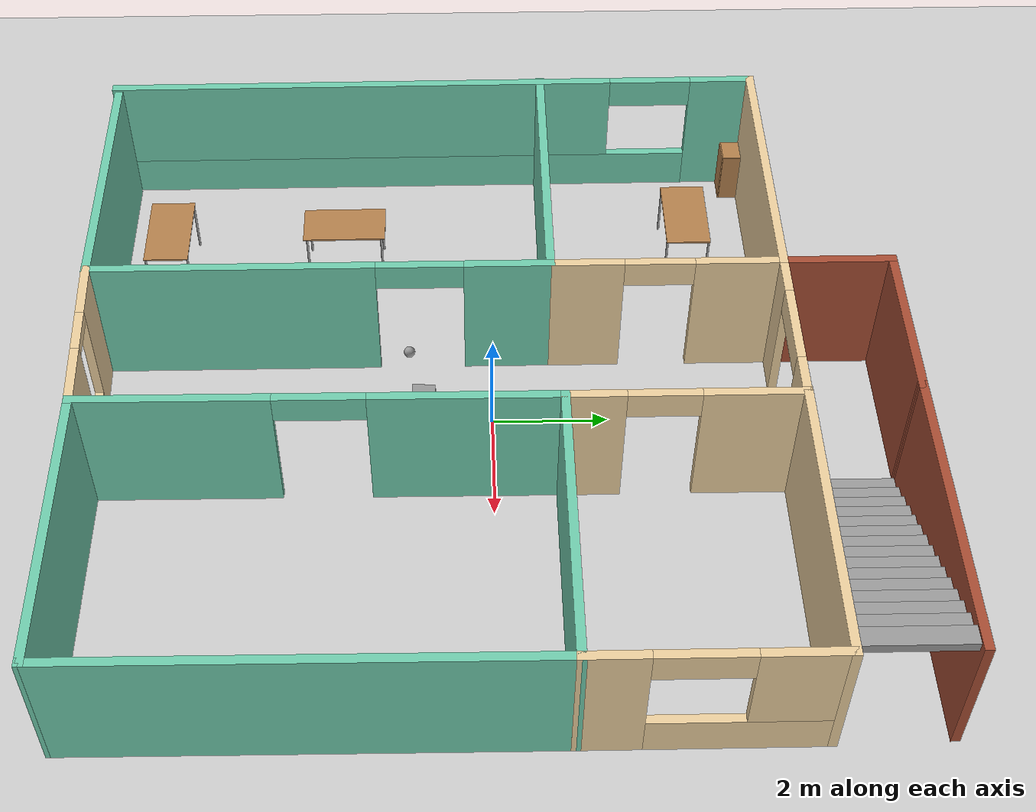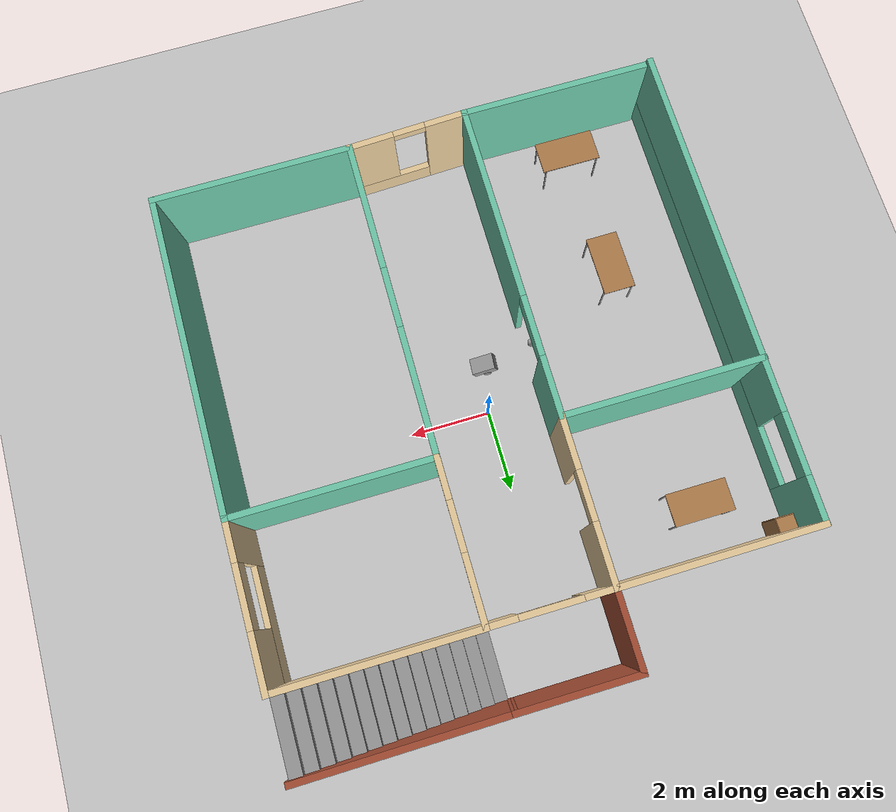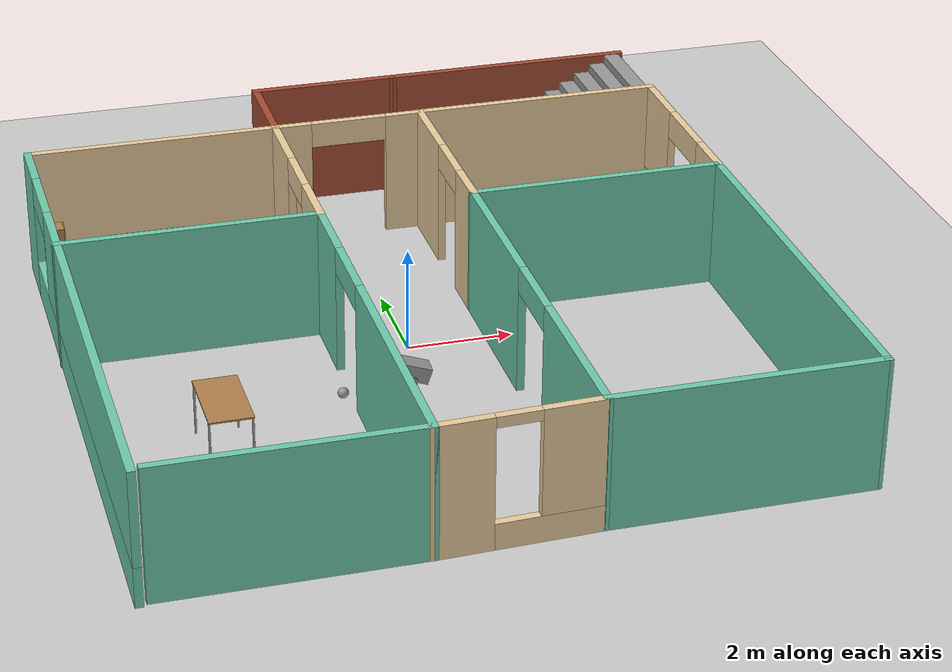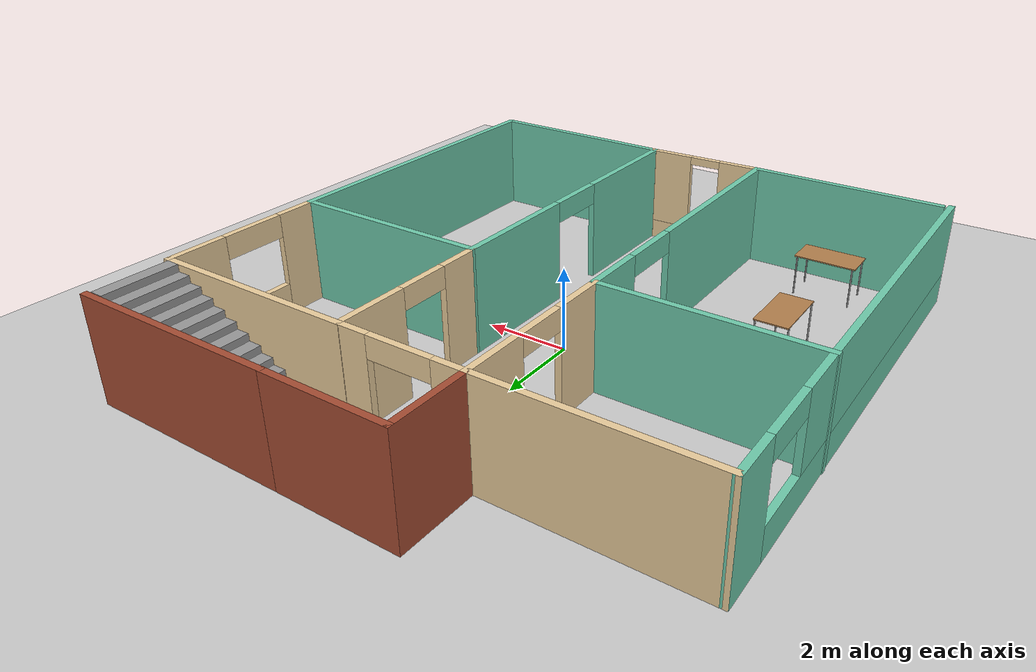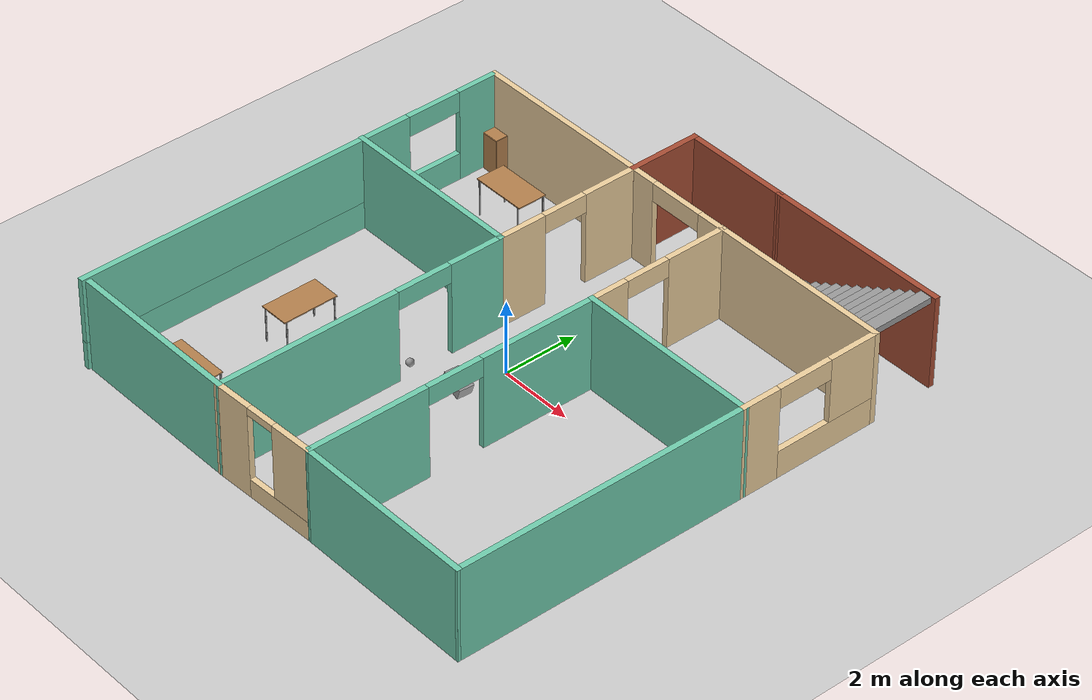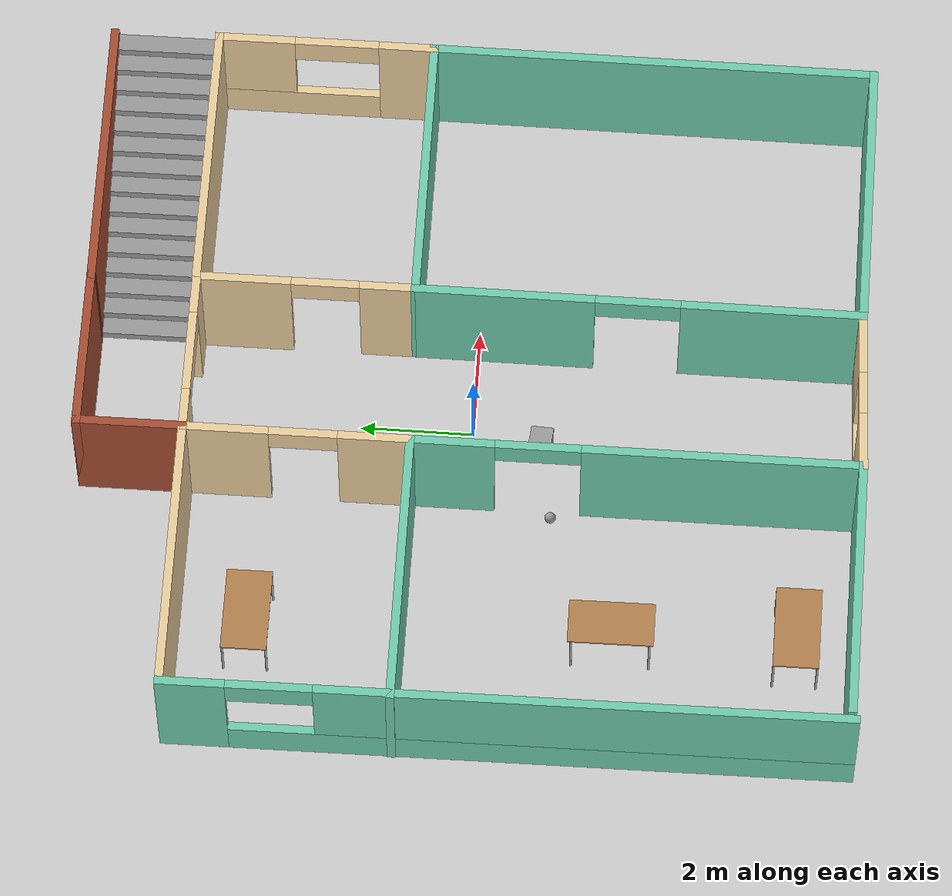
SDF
<sdf version="1.6">
 <world name="default">
  <model name="ground_plane">
   <static>1</static>
   <link name="link">
    <collision name="collision">
     <geometry><plane><normal>0 0 1</normal><size>100 100</size></plane></geometry>
     <surface><friction><ode><mu>100</mu><mu2>50</mu2></ode></friction></surface>
    </collision>
    <visual name="visual">
     <cast_shadows>0</cast_shadows>
     <geometry><plane><normal>0 0 1</normal><size>100 100</size></plane></geometry>
     <material>
      <script><uri>file://media/materials/scripts/gazebo.material</uri><name>Gazebo/Grey</name></script>
     </material>
    </visual>
   </link>
  </model>
  <model name="robot">
   <link name="link_0">
    <pose>-0.18265 0.141093 0.139854 0 -0 0</pose>
    <inertial>
     <mass>1</mass>
     <inertia>
      <ixx>0.166667</ixx>
      <ixy>0</ixy>
      <ixz>0</ixz>
      <iyy>0.166667</iyy>
      <iyz>0</iyz>
      <izz>0.166667</izz>
     </inertia>
    </inertial>
    <visual name="visual">
     <geometry><box><size>0.6 0.4 0.3</size></box></geometry>
     <material>
      <lighting>1</lighting>
      <script><uri>file://media/materials/scripts/gazebo.material</uri><name>Gazebo/Grey</name></script>
      <shader type="pixel"><normal_map>__default__</normal_map></shader>
      <ambient>0.3 0.3 0.3 1</ambient>
      <diffuse>0.7 0.7 0.7 1</diffuse>
      <specular>0.01 0.01 0.01 1</specular>
      <emissive>0 0 0 1</emissive>
     </material>
    </visual>
    <collision name="collision">
     <geometry><box><size>0.6 0.4 0.3</size></box></geometry>
     <surface>
      <friction>
       <ode><mu>1</mu><mu2>1</mu2><fdir1>0 0 0</fdir1><slip1>0</slip1><slip2>0</slip2></ode>
       <torsional>
        <coefficient>1</coefficient>
        <patch_radius>0</patch_radius>
        <surface_radius>0</surface_radius>
        <use_patch_radius>1</use_patch_radius>
        <ode><slip>0</slip></ode>
       </torsional>
      </friction>
      <bounce><restitution_coefficient>0</restitution_coefficient><threshold>1e+06</threshold></bounce>
      <contact>
       <collide_without_contact>0</collide_without_contact>
       <collide_without_contact_bitmask>1</collide_without_contact_bitmask>
       <collide_bitmask>1</collide_bitmask>
       <ode>
        <soft_cfm>0</soft_cfm>
        <soft_erp>0.2</soft_erp>
        <kp>1e+13</kp>
        <kd>1</kd>
        <max_vel>0.01</max_vel>
        <min_depth>0</min_depth>
       </ode>
       <bullet>
        <split_impulse>1</split_impulse>
        <split_impulse_penetration_threshold>-0.01</split_impulse_penetration_threshold>
        <soft_cfm>0</soft_cfm>
        <soft_erp>0.2</soft_erp>
        <kp>1e+13</kp>
        <kd>1</kd>
       </bullet>
      </contact>
     </surface>
    </collision>
   </link>
   <link name="link_1">
    <pose>-0.20265 0.341093 -0.010146 1.5707 -0 0</pose>
    <inertial>
     <mass>1</mass>
     <inertia><ixx>0.145833</ixx><ixy>0</ixy><ixz>0</ixz><iyy>0.145833</iyy><iyz>0</iyz><izz>0.125</izz></inertia>
    </inertial>
    <visual name="visual">
     <geometry><cylinder><radius>0.1</radius><length>0.05</length></cylinder></geometry>
     <material>
      <lighting>1</lighting>
      <script><uri>file://media/materials/scripts/gazebo.material</uri><name>Gazebo/Grey</name></script>
      <shader type="pixel"><normal_map>__default__</normal_map></shader>
      <ambient>0.3 0.3 0.3 1</ambient>
      <diffuse>0.7 0.7 0.7 1</diffuse>
      <specular>0.01 0.01 0.01 1</specular>
      <emissive>0 0 0 1</emissive>
     </material>
    </visual>
    <collision name="collision">
     <geometry><cylinder><radius>0.1</radius><length>0.05</length></cylinder></geometry>
     <surface>
      <friction>
       <ode><mu>1</mu><mu2>1</mu2><fdir1>0 0 0</fdir1><slip1>0</slip1><slip2>0</slip2></ode>
       <torsional>
        <coefficient>1</coefficient>
        <patch_radius>0</patch_radius>
        <surface_radius>0</surface_radius>
        <use_patch_radius>1</use_patch_radius>
        <ode><slip>0</slip></ode>
       </torsional>
      </friction>
      <bounce><restitution_coefficient>0</restitution_coefficient><threshold>1e+06</threshold></bounce>
      <contact>
       <collide_without_contact>0</collide_without_contact>
       <collide_without_contact_bitmask>1</collide_without_contact_bitmask>
       <collide_bitmask>1</collide_bitmask>
       <ode>
        <soft_cfm>0</soft_cfm>
        <soft_erp>0.2</soft_erp>
        <kp>1e+13</kp>
        <kd>1</kd>
        <max_vel>0.01</max_vel>
        <min_depth>0</min_depth>
       </ode>
       <bullet>
        <split_impulse>1</split_impulse>
        <split_impulse_penetration_threshold>-0.01</split_impulse_penetration_threshold>
        <soft_cfm>0</soft_cfm>
        <soft_erp>0.2</soft_erp>
        <kp>1e+13</kp>
        <kd>1</kd>
       </bullet>
      </contact>
     </surface>
    </collision>
   </link>
   <link name="link_1_clone">
    <pose>-0.18265 -0.058907 -0.010146 1.5707 -0 0</pose>
    <inertial>
     <mass>1</mass>
     <inertia><ixx>0.145833</ixx><ixy>0</ixy><ixz>0</ixz><iyy>0.145833</iyy><iyz>0</iyz><izz>0.125</izz></inertia>
    </inertial>
    <visual name="visual">
     <geometry><cylinder><radius>0.1</radius><length>0.05</length></cylinder></geometry>
     <material>
      <lighting>1</lighting>
      <script><uri>file://media/materials/scripts/gazebo.material</uri><name>Gazebo/Grey</name></script>
      <shader type="pixel"><normal_map>__default__</normal_map></shader>
      <ambient>0.3 0.3 0.3 1</ambient>
      <diffuse>0.7 0.7 0.7 1</diffuse>
      <specular>0.01 0.01 0.01 1</specular>
      <emissive>0 0 0 1</emissive>
     </material>
    </visual>
    <collision name="collision">
     <geometry><cylinder><radius>0.1</radius><length>0.05</length></cylinder></geometry>
     <surface>
      <friction>
       <ode><mu>1</mu><mu2>1</mu2><fdir1>0 0 0</fdir1><slip1>0</slip1><slip2>0</slip2></ode>
       <torsional>
        <coefficient>1</coefficient>
        <patch_radius>0</patch_radius>
        <surface_radius>0</surface_radius>
        <use_patch_radius>1</use_patch_radius>
        <ode><slip>0</slip></ode>
       </torsional>
      </friction>
      <bounce><restitution_coefficient>0</restitution_coefficient><threshold>1e+06</threshold></bounce>
      <contact>
       <collide_without_contact>0</collide_without_contact>
       <collide_without_contact_bitmask>1</collide_without_contact_bitmask>
       <collide_bitmask>1</collide_bitmask>
       <ode>
        <soft_cfm>0</soft_cfm>
        <soft_erp>0.2</soft_erp>
        <kp>1e+13</kp>
        <kd>1</kd>
        <max_vel>0.01</max_vel>
        <min_depth>0</min_depth>
       </ode>
       <bullet>
        <split_impulse>1</split_impulse>
        <split_impulse_penetration_threshold>-0.01</split_impulse_penetration_threshold>
        <soft_cfm>0</soft_cfm>
        <soft_erp>0.2</soft_erp>
        <kp>1e+13</kp>
        <kd>1</kd>
       </bullet>
      </contact>
     </surface>
    </collision>
   </link>
   <joint name="link_0_JOINT_0" type="revolute">
    <parent>link_0</parent>
    <child>link_1_clone</child>
    <axis>
     <xyz>1 0 0</xyz>
     <use_parent_model_frame>0</use_parent_model_frame>
     <limit>
      <lower>-1.79769e+308</lower>
      <upper>1.79769e+308</upper>
      <effort>-1</effort>
      <velocity>-1</velocity>
     </limit>
     <dynamics>
      <spring_reference>0</spring_reference>
      <spring_stiffness>0</spring_stiffness>
      <damping>0</damping>
     </dynamics>
    </axis>
    <physics>
     <ode><limit><cfm>0</cfm><erp>0.2</erp></limit><suspension><cfm>0</cfm><erp>0.2</erp></suspension></ode>
    </physics>
   </joint>
   <joint name="link_0_JOINT_1" type="revolute">
    <parent>link_0</parent>
    <child>link_1</child>
    <axis>
     <xyz>1 0 0</xyz>
     <use_parent_model_frame>0</use_parent_model_frame>
     <limit>
      <lower>-1.79769e+308</lower>
      <upper>1.79769e+308</upper>
      <effort>-1</effort>
      <velocity>-1</velocity>
     </limit>
     <dynamics>
      <spring_reference>0</spring_reference>
      <spring_stiffness>0</spring_stiffness>
      <damping>0</damping>
     </dynamics>
    </axis>
    <physics>
     <ode><limit><cfm>0</cfm><erp>0.2</erp></limit><suspension><cfm>0</cfm><erp>0.2</erp></suspension></ode>
    </physics>
   </joint>
   <static>0</static>
   <pose>-0.10996 -1.35477 0.051638 -0.016449 0.317824 -0.065412</pose>
  </model>
  <model name="building">
   <pose>0.088523 -0.033971 0 0 -0 0</pose>
   <link name="Stairs_0">
    <visual name="Stairs_0_Visual_0">
     <pose>1.59394 5.92691 0.083333 0 -0 1.5708</pose>
     <geometry><box><size>1.7 0.320986 0.166667</size></box></geometry>
     <material>
      <script><uri>file://media/materials/scripts/gazebo.material</uri><name>Gazebo/Grey</name></script>
      <ambient>1 1 1 1</ambient>
     </material>
     <meta><layer>0</layer></meta>
    </visual>
    <collision name="Stairs_0_Collision_0">
     <geometry><box><size>1.7 0.320986 0.166667</size></box></geometry>
     <pose>1.59394 5.92691 0.083333 0 -0 1.5708</pose>
    </collision>
    <visual name="Stairs_0_Visual_1">
     <pose>1.91492 5.92691 0.25 0 -0 1.5708</pose>
     <geometry><box><size>1.7 0.320986 0.166667</size></box></geometry>
     <material>
      <script><uri>file://media/materials/scripts/gazebo.material</uri><name>Gazebo/Grey</name></script>
      <ambient>1 1 1 1</ambient>
     </material>
     <meta><layer>0</layer></meta>
    </visual>
    <collision name="Stairs_0_Collision_1">
     <geometry><box><size>1.7 0.320986 0.166667</size></box></geometry>
     <pose>1.91492 5.92691 0.25 0 -0 1.5708</pose>
    </collision>
    <visual name="Stairs_0_Visual_2">
     <pose>2.23591 5.92691 0.416667 0 -0 1.5708</pose>
     <geometry><box><size>1.7 0.320986 0.166667</size></box></geometry>
     <material>
      <script><uri>file://media/materials/scripts/gazebo.material</uri><name>Gazebo/Grey</name></script>
      <ambient>1 1 1 1</ambient>
     </material>
     <meta><layer>0</layer></meta>
    </visual>
    <collision name="Stairs_0_Collision_2">
     <geometry><box><size>1.7 0.320986 0.166667</size></box></geometry>
     <pose>2.23591 5.92691 0.416667 0 -0 1.5708</pose>
    </collision>
    <visual name="Stairs_0_Visual_3">
     <pose>2.55689 5.92691 0.583333 0 -0 1.5708</pose>
     <geometry><box><size>1.7 0.320986 0.166667</size></box></geometry>
     <material>
      <script><uri>file://media/materials/scripts/gazebo.material</uri><name>Gazebo/Grey</name></script>
      <ambient>1 1 1 1</ambient>
     </material>
     <meta><layer>0</layer></meta>
    </visual>
    <collision name="Stairs_0_Collision_3">
     <geometry><box><size>1.7 0.320986 0.166667</size></box></geometry>
     <pose>2.55689 5.92691 0.583333 0 -0 1.5708</pose>
    </collision>
    <visual name="Stairs_0_Visual_4">
     <pose>2.87788 5.92691 0.75 0 -0 1.5708</pose>
     <geometry><box><size>1.7 0.320986 0.166667</size></box></geometry>
     <material>
      <script><uri>file://media/materials/scripts/gazebo.material</uri><name>Gazebo/Grey</name></script>
      <ambient>1 1 1 1</ambient>
     </material>
     <meta><layer>0</layer></meta>
    </visual>
    <collision name="Stairs_0_Collision_4">
     <geometry><box><size>1.7 0.320986 0.166667</size></box></geometry>
     <pose>2.87788 5.92691 0.75 0 -0 1.5708</pose>
    </collision>
    <visual name="Stairs_0_Visual_5">
     <pose>3.19887 5.92691 0.916667 0 -0 1.5708</pose>
     <geometry><box><size>1.7 0.320986 0.166667</size></box></geometry>
     <material>
      <script><uri>file://media/materials/scripts/gazebo.material</uri><name>Gazebo/Grey</name></script>
      <ambient>1 1 1 1</ambient>
     </material>
     <meta><layer>0</layer></meta>
    </visual>
    <collision name="Stairs_0_Collision_5">
     <geometry><box><size>1.7 0.320986 0.166667</size></box></geometry>
     <pose>3.19887 5.92691 0.916667 0 -0 1.5708</pose>
    </collision>
    <visual name="Stairs_0_Visual_6">
     <pose>3.51985 5.92691 1.08333 0 -0 1.5708</pose>
     <geometry><box><size>1.7 0.320986 0.166667</size></box></geometry>
     <material>
      <script><uri>file://media/materials/scripts/gazebo.material</uri><name>Gazebo/Grey</name></script>
      <ambient>1 1 1 1</ambient>
     </material>
     <meta><layer>0</layer></meta>
    </visual>
    <collision name="Stairs_0_Collision_6">
     <geometry><box><size>1.7 0.320986 0.166667</size></box></geometry>
     <pose>3.51985 5.92691 1.08333 0 -0 1.5708</pose>
    </collision>
    <visual name="Stairs_0_Visual_7">
     <pose>3.84084 5.92691 1.25 0 -0 1.5708</pose>
     <geometry><box><size>1.7 0.320986 0.166667</size></box></geometry>
     <material>
      <script><uri>file://media/materials/scripts/gazebo.material</uri><name>Gazebo/Grey</name></script>
      <ambient>1 1 1 1</ambient>
     </material>
     <meta><layer>0</layer></meta>
    </visual>
    <collision name="Stairs_0_Collision_7">
     <geometry><box><size>1.7 0.320986 0.166667</size></box></geometry>
     <pose>3.84084 5.92691 1.25 0 -0 1.5708</pose>
    </collision>
    <visual name="Stairs_0_Visual_8">
     <pose>4.16182 5.92691 1.41667 0 -0 1.5708</pose>
     <geometry><box><size>1.7 0.320986 0.166667</size></box></geometry>
     <material>
      <script><uri>file://media/materials/scripts/gazebo.material</uri><name>Gazebo/Grey</name></script>
      <ambient>1 1 1 1</ambient>
     </material>
     <meta><layer>0</layer></meta>
    </visual>
    <collision name="Stairs_0_Collision_8">
     <geometry><box><size>1.7 0.320986 0.166667</size></box></geometry>
     <pose>4.16182 5.92691 1.41667 0 -0 1.5708</pose>
    </collision>
    <visual name="Stairs_0_Visual_9">
     <pose>4.48281 5.92691 1.58333 0 -0 1.5708</pose>
     <geometry><box><size>1.7 0.320986 0.166667</size></box></geometry>
     <material>
      <script><uri>file://media/materials/scripts/gazebo.material</uri><name>Gazebo/Grey</name></script>
      <ambient>1 1 1 1</ambient>
     </material>
     <meta><layer>0</layer></meta>
    </visual>
    <collision name="Stairs_0_Collision_9">
     <geometry><box><size>1.7 0.320986 0.166667</size></box></geometry>
     <pose>4.48281 5.92691 1.58333 0 -0 1.5708</pose>
    </collision>
    <visual name="Stairs_0_Visual_10">
     <pose>4.8038 5.92691 1.75 0 -0 1.5708</pose>
     <geometry><box><size>1.7 0.320986 0.166667</size></box></geometry>
     <material>
      <script><uri>file://media/materials/scripts/gazebo.material</uri><name>Gazebo/Grey</name></script>
      <ambient>1 1 1 1</ambient>
     </material>
     <meta><layer>0</layer></meta>
    </visual>
    <collision name="Stairs_0_Collision_10">
     <geometry><box><size>1.7 0.320986 0.166667</size></box></geometry>
     <pose>4.8038 5.92691 1.75 0 -0 1.5708</pose>
    </collision>
    <visual name="Stairs_0_Visual_11">
     <pose>5.12478 5.92691 1.91667 0 -0 1.5708</pose>
     <geometry><box><size>1.7 0.320986 0.166667</size></box></geometry>
     <material>
      <script><uri>file://media/materials/scripts/gazebo.material</uri><name>Gazebo/Grey</name></script>
      <ambient>1 1 1 1</ambient>
     </material>
     <meta><layer>0</layer></meta>
    </visual>
    <collision name="Stairs_0_Collision_11">
     <geometry><box><size>1.7 0.320986 0.166667</size></box></geometry>
     <pose>5.12478 5.92691 1.91667 0 -0 1.5708</pose>
    </collision>
    <visual name="Stairs_0_Visual_12">
     <pose>5.44577 5.92691 2.08333 0 -0 1.5708</pose>
     <geometry><box><size>1.7 0.320986 0.166667</size></box></geometry>
     <material>
      <script><uri>file://media/materials/scripts/gazebo.material</uri><name>Gazebo/Grey</name></script>
      <ambient>1 1 1 1</ambient>
     </material>
     <meta><layer>0</layer></meta>
    </visual>
    <collision name="Stairs_0_Collision_12">
     <geometry><box><size>1.7 0.320986 0.166667</size></box></geometry>
     <pose>5.44577 5.92691 2.08333 0 -0 1.5708</pose>
    </collision>
    <visual name="Stairs_0_Visual_13">
     <pose>5.76675 5.92691 2.25 0 -0 1.5708</pose>
     <geometry><box><size>1.7 0.320986 0.166667</size></box></geometry>
     <material>
      <script><uri>file://media/materials/scripts/gazebo.material</uri><name>Gazebo/Grey</name></script>
      <ambient>1 1 1 1</ambient>
     </material>
     <meta><layer>0</layer></meta>
    </visual>
    <collision name="Stairs_0_Collision_13">
     <geometry><box><size>1.7 0.320986 0.166667</size></box></geometry>
     <pose>5.76675 5.92691 2.25 0 -0 1.5708</pose>
    </collision>
    <visual name="Stairs_0_Visual_14">
     <pose>6.08774 5.92691 2.41667 0 -0 1.5708</pose>
     <geometry><box><size>1.7 0.320986 0.166667</size></box></geometry>
     <material>
      <script><uri>file://media/materials/scripts/gazebo.material</uri><name>Gazebo/Grey</name></script>
      <ambient>1 1 1 1</ambient>
     </material>
     <meta><layer>0</layer></meta>
    </visual>
    <collision name="Stairs_0_Collision_14">
     <geometry><box><size>1.7 0.320986 0.166667</size></box></geometry>
     <pose>6.08774 5.92691 2.41667 0 -0 1.5708</pose>
    </collision>
   </link>
   <link name="Wall_0">
    <collision name="Wall_0_Collision">
     <geometry><box><size>3 0.15 2.5</size></box></geometry>
     <pose>0 0 1.25 0 -0 0</pose>
    </collision>
    <visual name="Wall_0_Visual">
     <pose>0 0 1.25 0 -0 0</pose>
     <geometry><box><size>3 0.15 2.5</size></box></geometry>
     <material>
      <script><uri>file://media/materials/scripts/gazebo.material</uri><name>Gazebo/Bricks</name></script>
      <ambient>1 1 1 1</ambient>
     </material>
     <meta><layer>0</layer></meta>
    </visual>
    <pose>-0.046466 6.84416 0 0 -0 3.14159</pose>
   </link>
   <link name="Wall_1">
    <collision name="Wall_1_Collision">
     <geometry><box><size>2 0.15 2.5</size></box></geometry>
     <pose>0 0 1.25 0 -0 0</pose>
    </collision>
    <visual name="Wall_1_Visual">
     <pose>0 0 1.25 0 -0 0</pose>
     <geometry><box><size>2 0.15 2.5</size></box></geometry>
     <material>
      <script><uri>file://media/materials/scripts/gazebo.material</uri><name>Gazebo/Bricks</name></script>
      <ambient>1 1 1 1</ambient>
     </material>
     <meta><layer>0</layer></meta>
    </visual>
    <pose>-1.47147 5.91916 0 0 0 -1.5708</pose>
   </link>
   <link name="Wall_10">
    <collision name="Wall_10_Collision">
     <geometry><box><size>5 0.15 2.5</size></box></geometry>
     <pose>0 0 1.25 0 -0 0</pose>
    </collision>
    <visual name="Wall_10_Visual">
     <pose>0 0 1.25 0 -0 0</pose>
     <geometry><box><size>5 0.15 2.5</size></box></geometry>
     <material>
      <script><uri>file://media/materials/scripts/gazebo.material</uri><name>Gazebo/Grey</name></script>
      <ambient>0.435294 0.796078 0.67451 1</ambient>
     </material>
     <meta><layer>0</layer></meta>
    </visual>
    <pose>-3.90087 1.0402 0 0 -0 3.14159</pose>
   </link>
   <link name="Wall_12">
    <pose>1.47553 3.07898 0 0 -0 1.5708</pose>
    <visual name="Wall_12_Visual_0">
     <pose>-1.47098 0 1.25 0 -0 0</pose>
     <geometry><box><size>1.05804 0.15 2.5</size></box></geometry>
     <material>
      <script><uri>file://media/materials/scripts/gazebo.material</uri><name>Gazebo/Grey</name></script>
      <ambient>0.921569 0.807843 0.615686 1</ambient>
     </material>
     <meta><layer>0</layer></meta>
    </visual>
    <collision name="Wall_12_Collision_0">
     <geometry><box><size>1.05804 0.15 2.5</size></box></geometry>
     <pose>-1.47098 0 1.25 0 -0 0</pose>
    </collision>
    <visual name="Wall_12_Visual_1">
     <pose>1.12902 0 1.25 0 -0 0</pose>
     <geometry><box><size>1.74196 0.15 2.5</size></box></geometry>
     <material>
      <script><uri>file://media/materials/scripts/gazebo.material</uri><name>Gazebo/Grey</name></script>
      <ambient>0.921569 0.807843 0.615686 1</ambient>
     </material>
     <meta><layer>0</layer></meta>
    </visual>
    <collision name="Wall_12_Collision_1">
     <geometry><box><size>1.74196 0.15 2.5</size></box></geometry>
     <pose>1.12902 0 1.25 0 -0 0</pose>
    </collision>
    <visual name="Wall_12_Visual_2">
     <pose>-0.341962 0 2.25 0 -0 0</pose>
     <geometry><box><size>1.2 0.15 0.5</size></box></geometry>
     <material>
      <script><uri>file://media/materials/scripts/gazebo.material</uri><name>Gazebo/Grey</name></script>
      <ambient>0.921569 0.807843 0.615686 1</ambient>
     </material>
     <meta><layer>0</layer></meta>
    </visual>
    <collision name="Wall_12_Collision_2">
     <geometry><box><size>1.2 0.15 0.5</size></box></geometry>
     <pose>-0.341962 0 2.25 0 -0 0</pose>
    </collision>
   </link>
   <link name="Wall_15">
    <collision name="Wall_15_Collision">
     <geometry><box><size>5 0.15 2.5</size></box></geometry>
     <pose>0 0 1.25 0 -0 0</pose>
    </collision>
    <visual name="Wall_15_Visual">
     <pose>0 0 1.25 0 -0 0</pose>
     <geometry><box><size>5 0.15 2.5</size></box></geometry>
     <material>
      <script><uri>file://media/materials/scripts/gazebo.material</uri><name>Gazebo/Grey</name></script>
      <ambient>0.435294 0.796078 0.67451 1</ambient>
     </material>
     <meta><layer>0</layer></meta>
    </visual>
    <pose>3.90053 1.15398 0 0 -0 0</pose>
   </link>
   <link name="Wall_18">
    <pose>-1.47587 -2.8848 0 0 0 -1.5708</pose>
    <visual name="Wall_18_Visual_0">
     <pose>-3.2267 0 1.25 0 -0 0</pose>
     <geometry><box><size>1.54659 0.15 2.5</size></box></geometry>
     <material>
      <script><uri>file://media/materials/scripts/gazebo.material</uri><name>Gazebo/Grey</name></script>
      <ambient>0.435294 0.796078 0.67451 1</ambient>
     </material>
     <meta><layer>0</layer></meta>
    </visual>
    <collision name="Wall_18_Collision_0">
     <geometry><box><size>1.54659 0.15 2.5</size></box></geometry>
     <pose>-3.2267 0 1.25 0 -0 0</pose>
    </collision>
    <visual name="Wall_18_Visual_1">
     <pose>1.5233 0 1.25 0 -0 0</pose>
     <geometry><box><size>4.95341 0.15 2.5</size></box></geometry>
     <material>
      <script><uri>file://media/materials/scripts/gazebo.material</uri><name>Gazebo/Grey</name></script>
      <ambient>0.435294 0.796078 0.67451 1</ambient>
     </material>
     <meta><layer>0</layer></meta>
    </visual>
    <collision name="Wall_18_Collision_1">
     <geometry><box><size>4.95341 0.15 2.5</size></box></geometry>
     <pose>1.5233 0 1.25 0 -0 0</pose>
    </collision>
    <visual name="Wall_18_Visual_2">
     <pose>-1.70341 0 2.25 0 -0 0</pose>
     <geometry><box><size>1.5 0.15 0.5</size></box></geometry>
     <material>
      <script><uri>file://media/materials/scripts/gazebo.material</uri><name>Gazebo/Grey</name></script>
      <ambient>0.435294 0.796078 0.67451 1</ambient>
     </material>
     <meta><layer>0</layer></meta>
    </visual>
    <collision name="Wall_18_Collision_2">
     <geometry><box><size>1.5 0.15 0.5</size></box></geometry>
     <pose>-1.70341 0 2.25 0 -0 0</pose>
    </collision>
   </link>
   <link name="Wall_19">
    <collision name="Wall_19_Collision">
     <geometry><box><size>4.75 0.15 2.5</size></box></geometry>
     <pose>0 0 1.25 0 -0 0</pose>
    </collision>
    <visual name="Wall_19_Visual">
     <pose>0 0 1.25 0 -0 0</pose>
     <geometry><box><size>4.75 0.15 2.5</size></box></geometry>
     <material>
      <script><uri>file://media/materials/scripts/gazebo.material</uri><name>Gazebo/Grey</name></script>
      <ambient>0.435294 0.796078 0.67451 1</ambient>
     </material>
     <meta><layer>0</layer></meta>
    </visual>
    <pose>-3.77587 -6.8098 0 0 -0 3.14159</pose>
   </link>
   <link name="Wall_2">
    <collision name="Wall_2_Collision">
     <geometry><box><size>5 0.15 2.5</size></box></geometry>
     <pose>0 0 1.25 0 -0 0</pose>
    </collision>
    <visual name="Wall_2_Visual">
     <pose>0 0 1.25 0 -0 0</pose>
     <geometry><box><size>5 0.15 2.5</size></box></geometry>
     <material>
      <script><uri>file://media/materials/scripts/gazebo.material</uri><name>Gazebo/Grey</name></script>
      <ambient>0.921569 0.807843 0.615686 1</ambient>
     </material>
     <meta><layer>0</layer></meta>
    </visual>
    <pose>-3.89682 4.98839 0 0 0 -3.13921</pose>
   </link>
   <link name="Wall_21">
    <pose>1.45804 -2.77101 0 0 0 -1.57525</pose>
    <visual name="Wall_21_Visual_0">
     <pose>-2.38457 0 1.25 0 -0 0</pose>
     <geometry><box><size>3.23086 0.15 2.5</size></box></geometry>
     <material>
      <script><uri>file://media/materials/scripts/gazebo.material</uri><name>Gazebo/Grey</name></script>
      <ambient>0.435294 0.796078 0.67451 1</ambient>
     </material>
     <meta><layer>0</layer></meta>
    </visual>
    <collision name="Wall_21_Collision_0">
     <geometry><box><size>3.23086 0.15 2.5</size></box></geometry>
     <pose>-2.38457 0 1.25 0 -0 0</pose>
    </collision>
    <visual name="Wall_21_Visual_1">
     <pose>2.36543 0 1.25 0 -0 0</pose>
     <geometry><box><size>3.26914 0.15 2.5</size></box></geometry>
     <material>
      <script><uri>file://media/materials/scripts/gazebo.material</uri><name>Gazebo/Grey</name></script>
      <ambient>0.435294 0.796078 0.67451 1</ambient>
     </material>
     <meta><layer>0</layer></meta>
    </visual>
    <collision name="Wall_21_Collision_1">
     <geometry><box><size>3.26914 0.15 2.5</size></box></geometry>
     <pose>2.36543 0 1.25 0 -0 0</pose>
    </collision>
    <visual name="Wall_21_Visual_2">
     <pose>-0.019144 0 2.25 0 -0 0</pose>
     <geometry><box><size>1.5 0.15 0.5</size></box></geometry>
     <material>
      <script><uri>file://media/materials/scripts/gazebo.material</uri><name>Gazebo/Grey</name></script>
      <ambient>0.435294 0.796078 0.67451 1</ambient>
     </material>
     <meta><layer>0</layer></meta>
    </visual>
    <collision name="Wall_21_Collision_2">
     <geometry><box><size>1.5 0.15 0.5</size></box></geometry>
     <pose>-0.019144 0 2.25 0 -0 0</pose>
    </collision>
   </link>
   <link name="Wall_24">
    <collision name="Wall_24_Collision">
     <geometry><box><size>5 0.15 2.5</size></box></geometry>
     <pose>0 0 1.25 0 -0 0</pose>
    </collision>
    <visual name="Wall_24_Visual">
     <pose>0 0 1.25 0 -0 0</pose>
     <geometry><box><size>5 0.15 2.5</size></box></geometry>
     <material>
      <script><uri>file://media/materials/scripts/gazebo.material</uri><name>Gazebo/Grey</name></script>
      <ambient>0.921569 0.807843 0.615686 1</ambient>
     </material>
     <meta><layer>0</layer></meta>
    </visual>
    <pose>3.90053 5.00398 0 0 -0 3.14159</pose>
   </link>
   <link name="Wall_26">
    <pose>6.32553 3.07898 0 0 -0 1.5708</pose>
    <visual name="Wall_26_Visual_0">
     <pose>-1.4666 0 1.25 0 -0 0</pose>
     <geometry><box><size>1.0668 0.15 2.5</size></box></geometry>
     <material>
      <script><uri>file://media/materials/scripts/gazebo.material</uri><name>Gazebo/Grey</name></script>
      <ambient>0.921569 0.807843 0.615686 1</ambient>
     </material>
     <meta><layer>0</layer></meta>
    </visual>
    <collision name="Wall_26_Collision_0">
     <geometry><box><size>1.0668 0.15 2.5</size></box></geometry>
     <pose>-1.4666 0 1.25 0 -0 0</pose>
    </collision>
    <visual name="Wall_26_Visual_1">
     <pose>0.533401 0 0.375 0 -0 0</pose>
     <geometry><box><size>2.9332 0.15 0.75</size></box></geometry>
     <material>
      <script><uri>file://media/materials/scripts/gazebo.material</uri><name>Gazebo/Grey</name></script>
      <ambient>0.921569 0.807843 0.615686 1</ambient>
     </material>
     <meta><layer>0</layer></meta>
    </visual>
    <collision name="Wall_26_Collision_1">
     <geometry><box><size>2.9332 0.15 0.75</size></box></geometry>
     <pose>0.533401 0 0.375 0 -0 0</pose>
    </collision>
    <visual name="Wall_26_Visual_2">
     <pose>1.2834 0 1.625 0 -0 0</pose>
     <geometry><box><size>1.4332 0.15 1.75</size></box></geometry>
     <material>
      <script><uri>file://media/materials/scripts/gazebo.material</uri><name>Gazebo/Grey</name></script>
      <ambient>0.921569 0.807843 0.615686 1</ambient>
     </material>
     <meta><layer>0</layer></meta>
    </visual>
    <collision name="Wall_26_Collision_2">
     <geometry><box><size>1.4332 0.15 1.75</size></box></geometry>
     <pose>1.2834 0 1.625 0 -0 0</pose>
    </collision>
    <visual name="Wall_26_Visual_3">
     <pose>-0.183198 0 2.225 0 -0 0</pose>
     <geometry><box><size>1.5 0.15 0.55</size></box></geometry>
     <material>
      <script><uri>file://media/materials/scripts/gazebo.material</uri><name>Gazebo/Grey</name></script>
      <ambient>0.921569 0.807843 0.615686 1</ambient>
     </material>
     <meta><layer>0</layer></meta>
    </visual>
    <collision name="Wall_26_Collision_3">
     <geometry><box><size>1.5 0.15 0.55</size></box></geometry>
     <pose>-0.183198 0 2.225 0 -0 0</pose>
    </collision>
   </link>
   <link name="Wall_28">
    <collision name="Wall_28_Collision">
     <geometry><box><size>5 0.15 2.5</size></box></geometry>
     <pose>0 0 1.25 0 -0 0</pose>
    </collision>
    <visual name="Wall_28_Visual">
     <pose>0 0 1.25 0 -0 0</pose>
     <geometry><box><size>5 0.15 2.5</size></box></geometry>
     <material>
      <script><uri>file://media/materials/scripts/gazebo.material</uri><name>Gazebo/Grey</name></script>
      <ambient>0.435294 0.796078 0.67451 1</ambient>
     </material>
     <meta><layer>0</layer></meta>
    </visual>
    <pose>3.86555 -6.69602 0 0 -0 0</pose>
   </link>
   <link name="Wall_3">
    <pose>-6.29817 -0.942386 0 0 0 -1.56675</pose>
    <visual name="Wall_3_Visual_0">
     <pose>-5.39979 0 1.25 0 -0 0</pose>
     <geometry><box><size>1.20042 0.15 2.5</size></box></geometry>
     <material>
      <script><uri>file://media/materials/scripts/gazebo.material</uri><name>Gazebo/Grey</name></script>
      <ambient>0.435294 0.796078 0.67451 1</ambient>
     </material>
     <meta><layer>0</layer></meta>
    </visual>
    <collision name="Wall_3_Collision_0">
     <geometry><box><size>1.20042 0.15 2.5</size></box></geometry>
     <pose>-5.39979 0 1.25 0 -0 0</pose>
    </collision>
    <visual name="Wall_3_Visual_1">
     <pose>0.600208 0 0.375 0 -0 0</pose>
     <geometry><box><size>10.7996 0.15 0.75</size></box></geometry>
     <material>
      <script><uri>file://media/materials/scripts/gazebo.material</uri><name>Gazebo/Grey</name></script>
      <ambient>0.435294 0.796078 0.67451 1</ambient>
     </material>
     <meta><layer>0</layer></meta>
    </visual>
    <collision name="Wall_3_Collision_1">
     <geometry><box><size>10.7996 0.15 0.75</size></box></geometry>
     <pose>0.600208 0 0.375 0 -0 0</pose>
    </collision>
    <visual name="Wall_3_Visual_2">
     <pose>1.35021 0 1.625 0 -0 0</pose>
     <geometry><box><size>9.29959 0.15 1.75</size></box></geometry>
     <material>
      <script><uri>file://media/materials/scripts/gazebo.material</uri><name>Gazebo/Grey</name></script>
      <ambient>0.435294 0.796078 0.67451 1</ambient>
     </material>
     <meta><layer>0</layer></meta>
    </visual>
    <collision name="Wall_3_Collision_2">
     <geometry><box><size>9.29959 0.15 1.75</size></box></geometry>
     <pose>1.35021 0 1.625 0 -0 0</pose>
    </collision>
    <visual name="Wall_3_Visual_3">
     <pose>-4.04959 0 2.225 0 -0 0</pose>
     <geometry><box><size>1.5 0.15 0.55</size></box></geometry>
     <material>
      <script><uri>file://media/materials/scripts/gazebo.material</uri><name>Gazebo/Grey</name></script>
      <ambient>0.435294 0.796078 0.67451 1</ambient>
     </material>
     <meta><layer>0</layer></meta>
    </visual>
    <collision name="Wall_3_Collision_3">
     <geometry><box><size>1.5 0.15 0.55</size></box></geometry>
     <pose>-4.04959 0 2.225 0 -0 0</pose>
    </collision>
   </link>
   <link name="Wall_30">
    <collision name="Wall_30_Collision">
     <geometry><box><size>8.00008 0.15 2.5</size></box></geometry>
     <pose>0 0 1.25 0 -0 0</pose>
    </collision>
    <visual name="Wall_30_Visual">
     <pose>0 0 1.25 0 -0 0</pose>
     <geometry><box><size>8.00008 0.15 2.5</size></box></geometry>
     <material>
      <script><uri>file://media/materials/scripts/gazebo.material</uri><name>Gazebo/Grey</name></script>
      <ambient>0.435294 0.796078 0.67451 1</ambient>
     </material>
     <meta><layer>0</layer></meta>
    </visual>
    <pose>6.30804 -2.77101 0 0 0 -1.57525</pose>
   </link>
   <link name="Wall_32">
    <pose>-0.017657 -6.75291 0 0 -0 0.038996</pose>
    <visual name="Wall_32_Visual_0">
     <pose>-0.987911 0 1.25 0 -0 0</pose>
     <geometry><box><size>1.09282 0.15 2.5</size></box></geometry>
     <material>
      <script><uri>file://media/materials/scripts/gazebo.material</uri><name>Gazebo/Grey</name></script>
      <ambient>0.921569 0.807843 0.615686 1</ambient>
     </material>
     <meta><layer>0</layer></meta>
    </visual>
    <collision name="Wall_32_Collision_0">
     <geometry><box><size>1.09282 0.15 2.5</size></box></geometry>
     <pose>-0.987911 0 1.25 0 -0 0</pose>
    </collision>
    <visual name="Wall_32_Visual_1">
     <pose>0.546409 0 0.25 0 -0 0</pose>
     <geometry><box><size>1.97582 0.15 0.5</size></box></geometry>
     <material>
      <script><uri>file://media/materials/scripts/gazebo.material</uri><name>Gazebo/Grey</name></script>
      <ambient>0.921569 0.807843 0.615686 1</ambient>
     </material>
     <meta><layer>0</layer></meta>
    </visual>
    <collision name="Wall_32_Collision_1">
     <geometry><box><size>1.97582 0.15 0.5</size></box></geometry>
     <pose>0.546409 0 0.25 0 -0 0</pose>
    </collision>
    <visual name="Wall_32_Visual_2">
     <pose>0.946409 0 1.5 0 -0 0</pose>
     <geometry><box><size>1.17582 0.15 2</size></box></geometry>
     <material>
      <script><uri>file://media/materials/scripts/gazebo.material</uri><name>Gazebo/Grey</name></script>
      <ambient>0.921569 0.807843 0.615686 1</ambient>
     </material>
     <meta><layer>0</layer></meta>
    </visual>
    <collision name="Wall_32_Collision_2">
     <geometry><box><size>1.17582 0.15 2</size></box></geometry>
     <pose>0.946409 0 1.5 0 -0 0</pose>
    </collision>
    <visual name="Wall_32_Visual_3">
     <pose>-0.041502 0 2.4 0 -0 0</pose>
     <geometry><box><size>0.8 0.15 0.2</size></box></geometry>
     <material>
      <script><uri>file://media/materials/scripts/gazebo.material</uri><name>Gazebo/Grey</name></script>
      <ambient>0.921569 0.807843 0.615686 1</ambient>
     </material>
     <meta><layer>0</layer></meta>
    </visual>
    <collision name="Wall_32_Collision_3">
     <geometry><box><size>0.8 0.15 0.2</size></box></geometry>
     <pose>-0.041502 0 2.4 0 -0 0</pose>
    </collision>
   </link>
   <link name="Wall_6">
    <collision name="Wall_6_Collision">
     <geometry><box><size>5.04632 0.15 2.5</size></box></geometry>
     <pose>0 0 1.25 0 -0 0</pose>
    </collision>
    <visual name="Wall_6_Visual">
     <pose>0 0 1.25 0 -0 0</pose>
     <geometry><box><size>5.04632 0.15 2.5</size></box></geometry>
     <material>
      <script><uri>file://media/materials/scripts/gazebo.material</uri><name>Gazebo/Bricks</name></script>
      <ambient>1 1 1 1</ambient>
     </material>
     <meta><layer>0</layer></meta>
    </visual>
    <pose>3.82666 6.85572 0 0 0 -3.13687</pose>
   </link>
   <link name="Wall_8">
    <pose>-0.046466 4.99416 0 0 -0 3.14159</pose>
    <visual name="Wall_8_Visual_0">
     <pose>-1.14822 0 1.25 0 -0 0</pose>
     <geometry><box><size>0.703569 0.15 2.5</size></box></geometry>
     <material>
      <script><uri>file://media/materials/scripts/gazebo.material</uri><name>Gazebo/Grey</name></script>
      <ambient>0.921569 0.807843 0.615686 1</ambient>
     </material>
     <meta><layer>0</layer></meta>
    </visual>
    <collision name="Wall_8_Collision_0">
     <geometry><box><size>0.703569 0.15 2.5</size></box></geometry>
     <pose>-1.14822 0 1.25 0 -0 0</pose>
    </collision>
    <visual name="Wall_8_Visual_1">
     <pose>1.10178 0 1.25 0 -0 0</pose>
     <geometry><box><size>0.796431 0.15 2.5</size></box></geometry>
     <material>
      <script><uri>file://media/materials/scripts/gazebo.material</uri><name>Gazebo/Grey</name></script>
      <ambient>0.921569 0.807843 0.615686 1</ambient>
     </material>
     <meta><layer>0</layer></meta>
    </visual>
    <collision name="Wall_8_Collision_1">
     <geometry><box><size>0.796431 0.15 2.5</size></box></geometry>
     <pose>1.10178 0 1.25 0 -0 0</pose>
    </collision>
    <visual name="Wall_8_Visual_2">
     <pose>-0.046431 0 2.25 0 -0 0</pose>
     <geometry><box><size>1.5 0.15 0.5</size></box></geometry>
     <material>
      <script><uri>file://media/materials/scripts/gazebo.material</uri><name>Gazebo/Grey</name></script>
      <ambient>0.921569 0.807843 0.615686 1</ambient>
     </material>
     <meta><layer>0</layer></meta>
    </visual>
    <collision name="Wall_8_Collision_2">
     <geometry><box><size>1.5 0.15 0.5</size></box></geometry>
     <pose>-0.046431 0 2.25 0 -0 0</pose>
    </collision>
   </link>
   <link name="Wall_9">
    <pose>-1.47367 3.01718 0 0 0 -1.57191</pose>
    <visual name="Wall_9_Visual_0">
     <pose>-1.26717 0 1.25 0 -0 0</pose>
     <geometry><box><size>1.56963 0.15 2.5</size></box></geometry>
     <material>
      <script><uri>file://media/materials/scripts/gazebo.material</uri><name>Gazebo/Grey</name></script>
      <ambient>0.921569 0.807843 0.615686 1</ambient>
     </material>
     <meta><layer>0</layer></meta>
    </visual>
    <collision name="Wall_9_Collision_0">
     <geometry><box><size>1.56963 0.15 2.5</size></box></geometry>
     <pose>-1.26717 0 1.25 0 -0 0</pose>
    </collision>
    <visual name="Wall_9_Visual_1">
     <pose>1.38481 0 1.25 0 -0 0</pose>
     <geometry><box><size>1.33434 0.15 2.5</size></box></geometry>
     <material>
      <script><uri>file://media/materials/scripts/gazebo.material</uri><name>Gazebo/Grey</name></script>
      <ambient>0.921569 0.807843 0.615686 1</ambient>
     </material>
     <meta><layer>0</layer></meta>
    </visual>
    <collision name="Wall_9_Collision_1">
     <geometry><box><size>1.33434 0.15 2.5</size></box></geometry>
     <pose>1.38481 0 1.25 0 -0 0</pose>
    </collision>
    <visual name="Wall_9_Visual_2">
     <pose>0.117646 0 2.25 0 -0 0</pose>
     <geometry><box><size>1.2 0.15 0.5</size></box></geometry>
     <material>
      <script><uri>file://media/materials/scripts/gazebo.material</uri><name>Gazebo/Grey</name></script>
      <ambient>0.921569 0.807843 0.615686 1</ambient>
     </material>
     <meta><layer>0</layer></meta>
    </visual>
    <collision name="Wall_9_Collision_2">
     <geometry><box><size>1.2 0.15 0.5</size></box></geometry>
     <pose>0.117646 0 2.25 0 -0 0</pose>
    </collision>
   </link>
   <static>1</static>
  </model>
  <model name="table">
   <static>1</static>
   <link name="link">
    <collision name="surface">
     <pose>0 0 1 0 -0 0</pose>
     <geometry><box><size>1.5 0.8 0.03</size></box></geometry>
     <surface><friction><ode><mu>0.6</mu><mu2>0.6</mu2></ode></friction></surface>
    </collision>
    <visual name="visual1">
     <pose>0 0 1 0 -0 0</pose>
     <geometry><box><size>1.5 0.8 0.03</size></box></geometry>
     <material>
      <script><uri>file://media/materials/scripts/gazebo.material</uri><name>Gazebo/Wood</name></script>
     </material>
    </visual>
    <collision name="front_left_leg">
     <pose>0.68 0.38 0.5 0 -0 0</pose>
     <geometry><cylinder><radius>0.02</radius><length>1</length></cylinder></geometry>
    </collision>
    <visual name="front_left_leg">
     <pose>0.68 0.38 0.5 0 -0 0</pose>
     <geometry><cylinder><radius>0.02</radius><length>1</length></cylinder></geometry>
     <material>
      <script><uri>file://media/materials/scripts/gazebo.material</uri><name>Gazebo/Grey</name></script>
     </material>
    </visual>
    <collision name="front_right_leg">
     <pose>0.68 -0.38 0.5 0 -0 0</pose>
     <geometry><cylinder><radius>0.02</radius><length>1</length></cylinder></geometry>
    </collision>
    <visual name="front_right_leg">
     <pose>0.68 -0.38 0.5 0 -0 0</pose>
     <geometry><cylinder><radius>0.02</radius><length>1</length></cylinder></geometry>
     <material>
      <script><uri>file://media/materials/scripts/gazebo.material</uri><name>Gazebo/Grey</name></script>
     </material>
    </visual>
    <collision name="back_right_leg">
     <pose>-0.68 -0.38 0.5 0 -0 0</pose>
     <geometry><cylinder><radius>0.02</radius><length>1</length></cylinder></geometry>
    </collision>
    <visual name="back_right_leg">
     <pose>-0.68 -0.38 0.5 0 -0 0</pose>
     <geometry><cylinder><radius>0.02</radius><length>1</length></cylinder></geometry>
     <material>
      <script><uri>file://media/materials/scripts/gazebo.material</uri><name>Gazebo/Grey</name></script>
     </material>
    </visual>
    <collision name="back_left_leg">
     <pose>-0.68 0.38 0.5 0 -0 0</pose>
     <geometry><cylinder><radius>0.02</radius><length>1</length></cylinder></geometry>
    </collision>
    <visual name="back_left_leg">
     <pose>-0.68 0.38 0.5 0 -0 0</pose>
     <geometry><cylinder><radius>0.02</radius><length>1</length></cylinder></geometry>
     <material>
      <script><uri>file://media/materials/scripts/gazebo.material</uri><name>Gazebo/Grey</name></script>
     </material>
    </visual>
   </link>
   <pose>-3.97426 -2.65742 0 0 0 -1.56502</pose>
  </model>
  <model name="cabinet">
   <static>1</static>
   <link name="cabinet_bottom_plate">
    <inertial>
     <pose>0 0 -1 0 -0 0</pose>
     <inertia><ixx>2.05</ixx><ixy>0</ixy><ixz>0</ixz><iyy>2.05</iyy><iyz>0</iyz><izz>2.05</izz></inertia>
     <mass>25</mass>
    </inertial>
    <collision name="cabinet_bottom_plate_geom">
     <pose>0 0 0.01 0 -0 0</pose>
     <geometry><box><size>0.45 0.45 0.02</size></box></geometry>
    </collision>
    <visual name="cabinet_bottom_plate_geom_visual">
     <pose>0 0 0.01 0 -0 0</pose>
     <geometry><box><size>0.45 0.45 0.02</size></box></geometry>
     <material>
      <script><uri>file://media/materials/scripts/gazebo.material</uri><name>Gazebo/Wood</name></script>
     </material>
    </visual>
    <collision name="cabinet_bottom_plate_geom_cabinet_back_plate">
     <pose>0.235 0 0.51 0 -0 0</pose>
     <geometry><box><size>0.02 0.45 1.02</size></box></geometry>
    </collision>
    <visual name="cabinet_bottom_plate_geom_cabinet_back_plate_visual">
     <pose>0.235 0 0.51 0 -0 0</pose>
     <geometry><box><size>0.02 0.45 1.02</size></box></geometry>
     <material>
      <script><uri>file://media/materials/scripts/gazebo.material</uri><name>Gazebo/Wood</name></script>
     </material>
    </visual>
    <collision name="cabinet_bottom_plate_geom_cabinet_left_plate">
     <pose>0 0.235 0.51 0 -0 0</pose>
     <geometry><box><size>0.45 0.02 1.02</size></box></geometry>
    </collision>
    <visual name="cabinet_bottom_plate_geom_cabinet_left_plate_visual">
     <pose>0 0.235 0.51 0 -0 0</pose>
     <geometry><box><size>0.45 0.02 1.02</size></box></geometry>
     <material>
      <script><uri>file://media/materials/scripts/gazebo.material</uri><name>Gazebo/Wood</name></script>
     </material>
    </visual>
    <collision name="cabinet_bottom_plate_geom_cabinet_middle_plate">
     <pose>0 0 0.51 0 -0 0</pose>
     <geometry><box><size>0.45 0.45 0.02</size></box></geometry>
    </collision>
    <visual name="cabinet_bottom_plate_geom_cabinet_middle_plate_visual">
     <pose>0 0 0.51 0 -0 0</pose>
     <geometry><box><size>0.45 0.45 0.02</size></box></geometry>
     <material>
      <script><uri>file://media/materials/scripts/gazebo.material</uri><name>Gazebo/Wood</name></script>
     </material>
    </visual>
    <collision name="cabinet_bottom_plate_geom_cabinet_right_plate">
     <pose>0 -0.235 0.51 0 -0 0</pose>
     <geometry><box><size>0.45 0.02 1.02</size></box></geometry>
    </collision>
    <visual name="cabinet_bottom_plate_geom_cabinet_right_plate_visual">
     <pose>0 -0.235 0.51 0 -0 0</pose>
     <geometry><box><size>0.45 0.02 1.02</size></box></geometry>
     <material>
      <script><uri>file://media/materials/scripts/gazebo.material</uri><name>Gazebo/Wood</name></script>
     </material>
    </visual>
    <collision name="cabinet_bottom_plate_geom_cabinet_top_plate">
     <pose>0 0 1.01 0 -0 0</pose>
     <geometry><box><size>0.45 0.45 0.02</size></box></geometry>
    </collision>
    <visual name="cabinet_bottom_plate_geom_cabinet_top_plate_visual">
     <pose>0 0 1.01 0 -0 0</pose>
     <geometry><box><size>0.45 0.45 0.02</size></box></geometry>
     <material>
      <script><uri>file://media/materials/scripts/gazebo.material</uri><name>Gazebo/Wood</name></script>
     </material>
    </visual>
   </link>
   <pose>-5.91684 4.76497 0 0 -0 0</pose>
  </model>
  <model name="table_1">
   <static>1</static>
   <link name="link">
    <collision name="surface">
     <pose>0 0 1 0 -0 0</pose>
     <geometry><box><size>1.5 0.8 0.03</size></box></geometry>
     <surface><friction><ode><mu>0.6</mu><mu2>0.6</mu2></ode></friction></surface>
    </collision>
    <visual name="visual1">
     <pose>0 0 1 0 -0 0</pose>
     <geometry><box><size>1.5 0.8 0.03</size></box></geometry>
     <material>
      <script><uri>file://media/materials/scripts/gazebo.material</uri><name>Gazebo/Wood</name></script>
     </material>
    </visual>
    <collision name="front_left_leg">
     <pose>0.68 0.38 0.5 0 -0 0</pose>
     <geometry><cylinder><radius>0.02</radius><length>1</length></cylinder></geometry>
    </collision>
    <visual name="front_left_leg">
     <pose>0.68 0.38 0.5 0 -0 0</pose>
     <geometry><cylinder><radius>0.02</radius><length>1</length></cylinder></geometry>
     <material>
      <script><uri>file://media/materials/scripts/gazebo.material</uri><name>Gazebo/Grey</name></script>
     </material>
    </visual>
    <collision name="front_right_leg">
     <pose>0.68 -0.38 0.5 0 -0 0</pose>
     <geometry><cylinder><radius>0.02</radius><length>1</length></cylinder></geometry>
    </collision>
    <visual name="front_right_leg">
     <pose>0.68 -0.38 0.5 0 -0 0</pose>
     <geometry><cylinder><radius>0.02</radius><length>1</length></cylinder></geometry>
     <material>
      <script><uri>file://media/materials/scripts/gazebo.material</uri><name>Gazebo/Grey</name></script>
     </material>
    </visual>
    <collision name="back_right_leg">
     <pose>-0.68 -0.38 0.5 0 -0 0</pose>
     <geometry><cylinder><radius>0.02</radius><length>1</length></cylinder></geometry>
    </collision>
    <visual name="back_right_leg">
     <pose>-0.68 -0.38 0.5 0 -0 0</pose>
     <geometry><cylinder><radius>0.02</radius><length>1</length></cylinder></geometry>
     <material>
      <script><uri>file://media/materials/scripts/gazebo.material</uri><name>Gazebo/Grey</name></script>
     </material>
    </visual>
    <collision name="back_left_leg">
     <pose>-0.68 0.38 0.5 0 -0 0</pose>
     <geometry><cylinder><radius>0.02</radius><length>1</length></cylinder></geometry>
    </collision>
    <visual name="back_left_leg">
     <pose>-0.68 0.38 0.5 0 -0 0</pose>
     <geometry><cylinder><radius>0.02</radius><length>1</length></cylinder></geometry>
     <material>
      <script><uri>file://media/materials/scripts/gazebo.material</uri><name>Gazebo/Grey</name></script>
     </material>
    </visual>
   </link>
   <pose>-4.12936 3.66509 0 0 -0 0</pose>
  </model>
  <model name="table_4">
   <static>1</static>
   <link name="link">
    <collision name="surface">
     <pose>0 0 1 0 -0 0</pose>
     <geometry><box><size>1.5 0.8 0.03</size></box></geometry>
     <surface><friction><ode><mu>0.6</mu><mu2>0.6</mu2></ode></friction></surface>
    </collision>
    <visual name="visual1">
     <pose>0 0 1 0 -0 0</pose>
     <geometry><box><size>1.5 0.8 0.03</size></box></geometry>
     <material>
      <script><uri>file://media/materials/scripts/gazebo.material</uri><name>Gazebo/Wood</name></script>
     </material>
    </visual>
    <collision name="front_left_leg">
     <pose>0.68 0.38 0.5 0 -0 0</pose>
     <geometry><cylinder><radius>0.02</radius><length>1</length></cylinder></geometry>
    </collision>
    <visual name="front_left_leg">
     <pose>0.68 0.38 0.5 0 -0 0</pose>
     <geometry><cylinder><radius>0.02</radius><length>1</length></cylinder></geometry>
     <material>
      <script><uri>file://media/materials/scripts/gazebo.material</uri><name>Gazebo/Grey</name></script>
     </material>
    </visual>
    <collision name="front_right_leg">
     <pose>0.68 -0.38 0.5 0 -0 0</pose>
     <geometry><cylinder><radius>0.02</radius><length>1</length></cylinder></geometry>
    </collision>
    <visual name="front_right_leg">
     <pose>0.68 -0.38 0.5 0 -0 0</pose>
     <geometry><cylinder><radius>0.02</radius><length>1</length></cylinder></geometry>
     <material>
      <script><uri>file://media/materials/scripts/gazebo.material</uri><name>Gazebo/Grey</name></script>
     </material>
    </visual>
    <collision name="back_right_leg">
     <pose>-0.68 -0.38 0.5 0 -0 0</pose>
     <geometry><cylinder><radius>0.02</radius><length>1</length></cylinder></geometry>
    </collision>
    <visual name="back_right_leg">
     <pose>-0.68 -0.38 0.5 0 -0 0</pose>
     <geometry><cylinder><radius>0.02</radius><length>1</length></cylinder></geometry>
     <material>
      <script><uri>file://media/materials/scripts/gazebo.material</uri><name>Gazebo/Grey</name></script>
     </material>
    </visual>
    <collision name="back_left_leg">
     <pose>-0.68 0.38 0.5 0 -0 0</pose>
     <geometry><cylinder><radius>0.02</radius><length>1</length></cylinder></geometry>
    </collision>
    <visual name="back_left_leg">
     <pose>-0.68 0.38 0.5 0 -0 0</pose>
     <geometry><cylinder><radius>0.02</radius><length>1</length></cylinder></geometry>
     <material>
      <script><uri>file://media/materials/scripts/gazebo.material</uri><name>Gazebo/Grey</name></script>
     </material>
    </visual>
   </link>
   <pose>-3.85573 -5.87824 0 0 -0 0</pose>
  </model>
  <model name="my_ball">
   <link name="link_1">
    <inertial>
     <mass>1</mass>
     <inertia><ixx>0.1</ixx><ixy>0</ixy><ixz>0</ixz><iyy>0.1</iyy><iyz>0</iyz><izz>0.1</izz></inertia>
    </inertial>
    <visual name="visual">
     <geometry><sphere><radius>0.1</radius></sphere></geometry>
     <material>
      <lighting>1</lighting>
      <script><uri>file://media/materials/scripts/gazebo.material</uri><name>Gazebo/Grey</name></script>
      <shader type="pixel"><normal_map>__default__</normal_map></shader>
      <ambient>1 1 1 1</ambient>
      <diffuse>1 1 1 1</diffuse>
      <specular>1 1 1 1</specular>
      <emissive>1 1 1 1</emissive>
     </material>
    </visual>
    <collision name="collision">
     <geometry><sphere><radius>0.1</radius></sphere></geometry>
     <surface>
      <friction>
       <ode><mu>1</mu><mu2>1</mu2><fdir1>0 0 0</fdir1><slip1>0</slip1><slip2>0</slip2></ode>
       <torsional>
        <coefficient>1</coefficient>
        <patch_radius>0</patch_radius>
        <surface_radius>0</surface_radius>
        <use_patch_radius>1</use_patch_radius>
        <ode><slip>0</slip></ode>
       </torsional>
      </friction>
      <bounce><restitution_coefficient>0</restitution_coefficient><threshold>1e+06</threshold></bounce>
      <contact>
       <collide_without_contact>0</collide_without_contact>
       <collide_without_contact_bitmask>1</collide_without_contact_bitmask>
       <collide_bitmask>1</collide_bitmask>
       <ode>
        <soft_cfm>0</soft_cfm>
        <soft_erp>0.2</soft_erp>
        <kp>1e+13</kp>
        <kd>1</kd>
        <max_vel>0.01</max_vel>
        <min_depth>0</min_depth>
       </ode>
       <bullet>
        <split_impulse>1</split_impulse>
        <split_impulse_penetration_threshold>-0.01</split_impulse_penetration_threshold>
        <soft_cfm>0</soft_cfm>
        <soft_erp>0.2</soft_erp>
        <kp>1e+13</kp>
        <kd>1</kd>
       </bullet>
      </contact>
     </surface>
    </collision>
   </link>
   <static>0</static>
   <pose>-1.58578 -1.46188 0.1 0 -0 0</pose>
  </model>
 </world>
</sdf>
